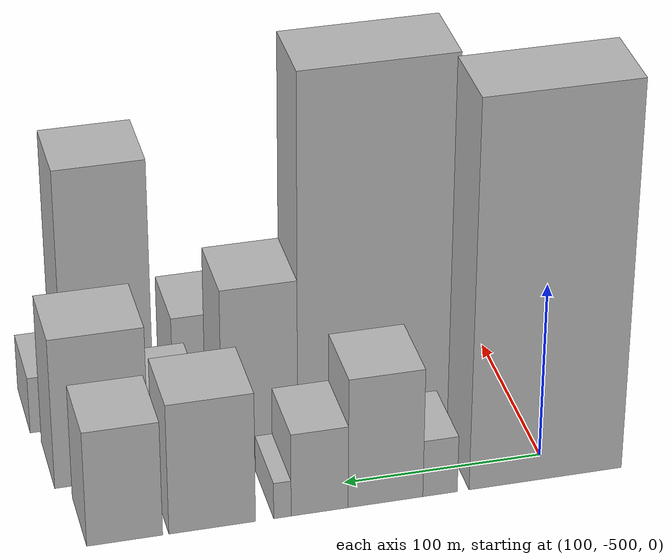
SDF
<sdf version="1.6">
 <world name="default">
  <model name="building_1">
   <static>1</static>
   <pose>100.0000 -496.9513 0 0.000000 0.000000 0.000000</pose>
   <link name="link">
    <pose>0 0 109.50 0 0 0</pose>
    <collision name="collision"><geometry><box><size>40.0000 78.0974 219.0000</size></box></geometry></collision>
    <visual name="visual">
     <cast_shadows>0</cast_shadows>
     <geometry><box><size>40.0000 78.0974 219.0000</size></box></geometry>
     <material>
      <script>
       <uri>model://HANNAS_wall/materials/scripts</uri>
       <uri>model://HANNAS_wall/materials/textures</uri>
       <name>vrc/HANNAS_wall</name>
      </script>
     </material>
    </visual>
   </link>
  </model>
  <model name="building_2">
   <static>1</static>
   <pose>100.0000 -443.2013 0 0.000000 0.000000 0.000000</pose>
   <link name="link">
    <pose>0 0 16.50 0 0 0</pose>
    <collision name="collision"><geometry><box><size>40.0000 17.4027 33.0000</size></box></geometry></collision>
    <visual name="visual">
     <cast_shadows>0</cast_shadows>
     <geometry><box><size>40.0000 17.4027 33.0000</size></box></geometry>
     <material>
      <script>
       <uri>model://HANNAS_wall/materials/scripts</uri>
       <uri>model://HANNAS_wall/materials/textures</uri>
       <name>vrc/HANNAS_wall</name>
      </script>
     </material>
    </visual>
   </link>
  </model>
  <model name="building_3">
   <static>1</static>
   <pose>100.0000 -415.7356 0 0.000000 0.000000 0.000000</pose>
   <link name="link">
    <pose>0 0 37.50 0 0 0</pose>
    <collision name="collision"><geometry><box><size>40.0000 37.5286 75.0000</size></box></geometry></collision>
    <visual name="visual">
     <cast_shadows>0</cast_shadows>
     <geometry><box><size>40.0000 37.5286 75.0000</size></box></geometry>
     <material>
      <script>
       <uri>model://HANNAS_wall/materials/scripts</uri>
       <uri>model://HANNAS_wall/materials/textures</uri>
       <name>vrc/HANNAS_wall</name>
      </script>
     </material>
    </visual>
   </link>
  </model>
  <model name="building_4">
   <static>1</static>
   <pose>100.0000 -382.7974 0 0.000000 0.000000 0.000000</pose>
   <link name="link">
    <pose>0 0 24.00 0 0 0</pose>
    <collision name="collision"><geometry><box><size>40.0000 28.3478 48.0000</size></box></geometry></collision>
    <visual name="visual">
     <cast_shadows>0</cast_shadows>
     <geometry><box><size>40.0000 28.3478 48.0000</size></box></geometry>
     <material>
      <script>
       <uri>model://HANNAS_wall/materials/scripts</uri>
       <uri>model://HANNAS_wall/materials/textures</uri>
       <name>vrc/HANNAS_wall</name>
      </script>
     </material>
    </visual>
   </link>
  </model>
  <model name="building_5">
   <static>1</static>
   <pose>100.0000 -364.3209 0 0.000000 0.000000 0.000000</pose>
   <link name="link">
    <pose>0 0 10.50 0 0 0</pose>
    <collision name="collision"><geometry><box><size>40.0000 8.6052 21.0000</size></box></geometry></collision>
    <visual name="visual">
     <cast_shadows>0</cast_shadows>
     <geometry><box><size>40.0000 8.6052 21.0000</size></box></geometry>
     <material>
      <script>
       <uri>model://HANNAS_wall/materials/scripts</uri>
       <uri>model://HANNAS_wall/materials/textures</uri>
       <name>vrc/HANNAS_wall</name>
      </script>
     </material>
    </visual>
   </link>
  </model>
  <model name="building_6">
   <static>1</static>
   <pose>100.0000 -329.7746 0 0.000000 0.000000 0.000000</pose>
   <link name="link">
    <pose>0 0 37.50 0 0 0</pose>
    <collision name="collision"><geometry><box><size>40.0000 42.4875 75.0000</size></box></geometry></collision>
    <visual name="visual">
     <cast_shadows>0</cast_shadows>
     <geometry><box><size>40.0000 42.4875 75.0000</size></box></geometry>
     <material>
      <script>
       <uri>model://HANNAS_wall/materials/scripts</uri>
       <uri>model://HANNAS_wall/materials/textures</uri>
       <name>vrc/HANNAS_wall</name>
      </script>
     </material>
    </visual>
   </link>
  </model>
  <model name="building_7">
   <static>1</static>
   <pose>100.0000 -287.1032 0 0.000000 0.000000 0.000000</pose>
   <link name="link">
    <pose>0 0 33.00 0 0 0</pose>
    <collision name="collision"><geometry><box><size>40.0000 36.8551 66.0000</size></box></geometry></collision>
    <visual name="visual">
     <cast_shadows>0</cast_shadows>
     <geometry><box><size>40.0000 36.8551 66.0000</size></box></geometry>
     <material>
      <script>
       <uri>model://HANNAS_wall/materials/scripts</uri>
       <uri>model://HANNAS_wall/materials/textures</uri>
       <name>vrc/HANNAS_wall</name>
      </script>
     </material>
    </visual>
   </link>
  </model>
  <model name="building_32">
   <static>1</static>
   <pose>149.0000 -518.9224 0 0.000000 0.000000 0.000000</pose>
   <link name="link">
    <pose>0 0 52.50 0 0 0</pose>
    <collision name="collision"><geometry><box><size>40.0000 34.1551 105.0000</size></box></geometry></collision>
    <visual name="visual">
     <cast_shadows>0</cast_shadows>
     <geometry><box><size>40.0000 34.1551 105.0000</size></box></geometry>
     <material>
      <script>
       <uri>model://HANNAS_wall/materials/scripts</uri>
       <uri>model://HANNAS_wall/materials/textures</uri>
       <name>vrc/HANNAS_wall</name>
      </script>
     </material>
    </visual>
   </link>
  </model>
  <model name="building_33">
   <static>1</static>
   <pose>149.0000 -482.2454 0 0.000000 0.000000 0.000000</pose>
   <link name="link">
    <pose>0 0 37.50 0 0 0</pose>
    <collision name="collision"><geometry><box><size>40.0000 39.1991 75.0000</size></box></geometry></collision>
    <visual name="visual">
     <cast_shadows>0</cast_shadows>
     <geometry><box><size>40.0000 39.1991 75.0000</size></box></geometry>
     <material>
      <script>
       <uri>model://HANNAS_wall/materials/scripts</uri>
       <uri>model://HANNAS_wall/materials/textures</uri>
       <name>vrc/HANNAS_wall</name>
      </script>
     </material>
    </visual>
   </link>
  </model>
  <model name="building_34">
   <static>1</static>
   <pose>149.0000 -423.0927 0 0.000000 0.000000 0.000000</pose>
   <link name="link">
    <pose>0 0 108.00 0 0 0</pose>
    <collision name="collision"><geometry><box><size>40.0000 79.1063 216.0000</size></box></geometry></collision>
    <visual name="visual">
     <cast_shadows>0</cast_shadows>
     <geometry><box><size>40.0000 79.1063 216.0000</size></box></geometry>
     <material>
      <script>
       <uri>model://HANNAS_wall/materials/scripts</uri>
       <uri>model://HANNAS_wall/materials/textures</uri>
       <name>vrc/HANNAS_wall</name>
      </script>
     </material>
    </visual>
   </link>
  </model>
  <model name="building_35">
   <static>1</static>
   <pose>149.0000 -364.4525 0 0.000000 0.000000 0.000000</pose>
   <link name="link">
    <pose>0 0 51.00 0 0 0</pose>
    <collision name="collision"><geometry><box><size>40.0000 38.1742 102.0000</size></box></geometry></collision>
    <visual name="visual">
     <cast_shadows>0</cast_shadows>
     <geometry><box><size>40.0000 38.1742 102.0000</size></box></geometry>
     <material>
      <script>
       <uri>model://HANNAS_wall/materials/scripts</uri>
       <uri>model://HANNAS_wall/materials/textures</uri>
       <name>vrc/HANNAS_wall</name>
      </script>
     </material>
    </visual>
   </link>
  </model>
  <model name="building_36">
   <static>1</static>
   <pose>149.0000 -340.2074 0 0.000000 0.000000 0.000000</pose>
   <link name="link">
    <pose>0 0 12.00 0 0 0</pose>
    <collision name="collision"><geometry><box><size>40.0000 10.3160 24.0000</size></box></geometry></collision>
    <visual name="visual">
     <cast_shadows>0</cast_shadows>
     <geometry><box><size>40.0000 10.3160 24.0000</size></box></geometry>
     <material>
      <script>
       <uri>model://HANNAS_wall/materials/scripts</uri>
       <uri>model://HANNAS_wall/materials/textures</uri>
       <name>vrc/HANNAS_wall</name>
      </script>
     </material>
    </visual>
   </link>
  </model>
  <model name="building_37">
   <static>1</static>
   <pose>149.0000 -321.8063 0 0.000000 0.000000 0.000000</pose>
   <link name="link">
    <pose>0 0 24.00 0 0 0</pose>
    <collision name="collision"><geometry><box><size>40.0000 26.4862 48.0000</size></box></geometry></collision>
    <visual name="visual">
     <cast_shadows>0</cast_shadows>
     <geometry><box><size>40.0000 26.4862 48.0000</size></box></geometry>
     <material>
      <script>
       <uri>model://HANNAS_wall/materials/scripts</uri>
       <uri>model://HANNAS_wall/materials/textures</uri>
       <name>vrc/HANNAS_wall</name>
      </script>
     </material>
    </visual>
   </link>
  </model>
  <model name="building_38">
   <static>1</static>
   <pose>149.0000 -285.0739 0 0.000000 0.000000 0.000000</pose>
   <link name="link">
    <pose>0 0 43.50 0 0 0</pose>
    <collision name="collision"><geometry><box><size>40.0000 46.9787 87.0000</size></box></geometry></collision>
    <visual name="visual">
     <cast_shadows>0</cast_shadows>
     <geometry><box><size>40.0000 46.9787 87.0000</size></box></geometry>
     <material>
      <script>
       <uri>model://HANNAS_wall/materials/scripts</uri>
       <uri>model://HANNAS_wall/materials/textures</uri>
       <name>vrc/HANNAS_wall</name>
      </script>
     </material>
    </visual>
   </link>
  </model>
  <model name="building_62">
   <static>1</static>
   <pose>198.0000 -516.9748 0 0.000000 0.000000 0.000000</pose>
   <link name="link">
    <pose>0 0 36.00 0 0 0</pose>
    <collision name="collision"><geometry><box><size>40.0000 38.0505 72.0000</size></box></geometry></collision>
    <visual name="visual">
     <cast_shadows>0</cast_shadows>
     <geometry><box><size>40.0000 38.0505 72.0000</size></box></geometry>
     <material>
      <script>
       <uri>model://HANNAS_wall/materials/scripts</uri>
       <uri>model://HANNAS_wall/materials/textures</uri>
       <name>vrc/HANNAS_wall</name>
      </script>
     </material>
    </visual>
   </link>
  </model>
  <model name="building_63">
   <static>1</static>
   <pose>198.0000 -478.1321 0 0.000000 0.000000 0.000000</pose>
   <link name="link">
    <pose>0 0 52.50 0 0 0</pose>
    <collision name="collision"><geometry><box><size>40.0000 39.6348 105.0000</size></box></geometry></collision>
    <visual name="visual">
     <cast_shadows>0</cast_shadows>
     <geometry><box><size>40.0000 39.6348 105.0000</size></box></geometry>
     <material>
      <script>
       <uri>model://HANNAS_wall/materials/scripts</uri>
       <uri>model://HANNAS_wall/materials/textures</uri>
       <name>vrc/HANNAS_wall</name>
      </script>
     </material>
    </visual>
   </link>
  </model>
  <model name="building_64">
   <static>1</static>
   <pose>198.0000 -453.7022 0 0.000000 0.000000 0.000000</pose>
   <link name="link">
    <pose>0 0 10.50 0 0 0</pose>
    <collision name="collision"><geometry><box><size>40.0000 9.2250 21.0000</size></box></geometry></collision>
    <visual name="visual">
     <cast_shadows>0</cast_shadows>
     <geometry><box><size>40.0000 9.2250 21.0000</size></box></geometry>
     <material>
      <script>
       <uri>model://HANNAS_wall/materials/scripts</uri>
       <uri>model://HANNAS_wall/materials/textures</uri>
       <name>vrc/HANNAS_wall</name>
      </script>
     </material>
    </visual>
   </link>
  </model>
  <model name="building_65">
   <static>1</static>
   <pose>198.0000 -433.8859 0 0.000000 0.000000 0.000000</pose>
   <link name="link">
    <pose>0 0 27.00 0 0 0</pose>
    <collision name="collision"><geometry><box><size>40.0000 30.4077 54.0000</size></box></geometry></collision>
    <visual name="visual">
     <cast_shadows>0</cast_shadows>
     <geometry><box><size>40.0000 30.4077 54.0000</size></box></geometry>
     <material>
      <script>
       <uri>model://HANNAS_wall/materials/scripts</uri>
       <uri>model://HANNAS_wall/materials/textures</uri>
       <name>vrc/HANNAS_wall</name>
      </script>
     </material>
    </visual>
   </link>
  </model>
  <model name="building_66">
   <static>1</static>
   <pose>198.0000 -404.8869 0 0.000000 0.000000 0.000000</pose>
   <link name="link">
    <pose>0 0 21.00 0 0 0</pose>
    <collision name="collision"><geometry><box><size>40.0000 21.5903 42.0000</size></box></geometry></collision>
    <visual name="visual">
     <cast_shadows>0</cast_shadows>
     <geometry><box><size>40.0000 21.5903 42.0000</size></box></geometry>
     <material>
      <script>
       <uri>model://HANNAS_wall/materials/scripts</uri>
       <uri>model://HANNAS_wall/materials/textures</uri>
       <name>vrc/HANNAS_wall</name>
      </script>
     </material>
    </visual>
   </link>
  </model>
  <model name="building_67">
   <static>1</static>
   <pose>198.0000 -375.3028 0 0.000000 0.000000 0.000000</pose>
   <link name="link">
    <pose>0 0 27.00 0 0 0</pose>
    <collision name="collision"><geometry><box><size>40.0000 31.5779 54.0000</size></box></geometry></collision>
    <visual name="visual">
     <cast_shadows>0</cast_shadows>
     <geometry><box><size>40.0000 31.5779 54.0000</size></box></geometry>
     <material>
      <script>
       <uri>model://HANNAS_wall/materials/scripts</uri>
       <uri>model://HANNAS_wall/materials/textures</uri>
       <name>vrc/HANNAS_wall</name>
      </script>
     </material>
    </visual>
   </link>
  </model>
  <model name="building_68">
   <static>1</static>
   <pose>198.0000 -345.0919 0 0.000000 0.000000 0.000000</pose>
   <link name="link">
    <pose>0 0 28.50 0 0 0</pose>
    <collision name="collision"><geometry><box><size>40.0000 28.8438 57.0000</size></box></geometry></collision>
    <visual name="visual">
     <cast_shadows>0</cast_shadows>
     <geometry><box><size>40.0000 28.8438 57.0000</size></box></geometry>
     <material>
      <script>
       <uri>model://HANNAS_wall/materials/scripts</uri>
       <uri>model://HANNAS_wall/materials/textures</uri>
       <name>vrc/HANNAS_wall</name>
      </script>
     </material>
    </visual>
   </link>
  </model>
  <model name="building_69">
   <static>1</static>
   <pose>198.0000 -297.7398 0 0.000000 0.000000 0.000000</pose>
   <link name="link">
    <pose>0 0 75.00 0 0 0</pose>
    <collision name="collision"><geometry><box><size>40.0000 45.8606 150.0000</size></box></geometry></collision>
    <visual name="visual">
     <cast_shadows>0</cast_shadows>
     <geometry><box><size>40.0000 45.8606 150.0000</size></box></geometry>
     <material>
      <script>
       <uri>model://HANNAS_wall/materials/scripts</uri>
       <uri>model://HANNAS_wall/materials/textures</uri>
       <name>vrc/HANNAS_wall</name>
      </script>
     </material>
    </visual>
   </link>
  </model>
  <model name="building_70">
   <static>1</static>
   <pose>198.0000 -266.1065 0 0.000000 0.000000 0.000000</pose>
   <link name="link">
    <pose>0 0 16.50 0 0 0</pose>
    <collision name="collision"><geometry><box><size>40.0000 17.4059 33.0000</size></box></geometry></collision>
    <visual name="visual">
     <cast_shadows>0</cast_shadows>
     <geometry><box><size>40.0000 17.4059 33.0000</size></box></geometry>
     <material>
      <script>
       <uri>model://HANNAS_wall/materials/scripts</uri>
       <uri>model://HANNAS_wall/materials/textures</uri>
       <name>vrc/HANNAS_wall</name>
      </script>
     </material>
    </visual>
   </link>
  </model>
 </world>
</sdf>
